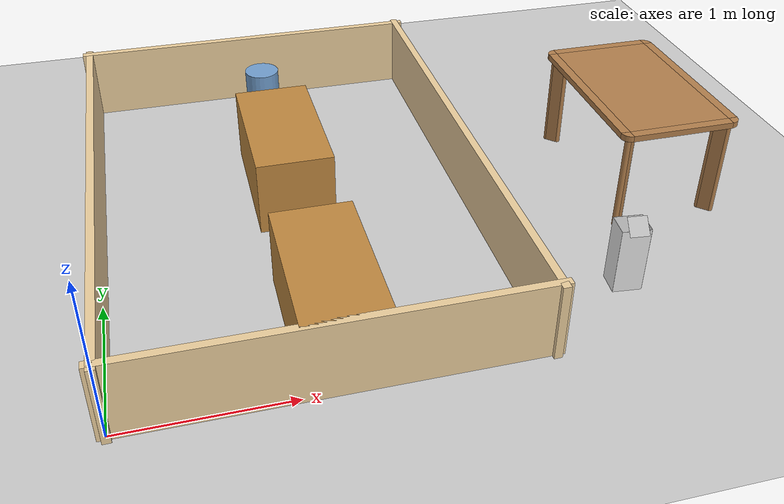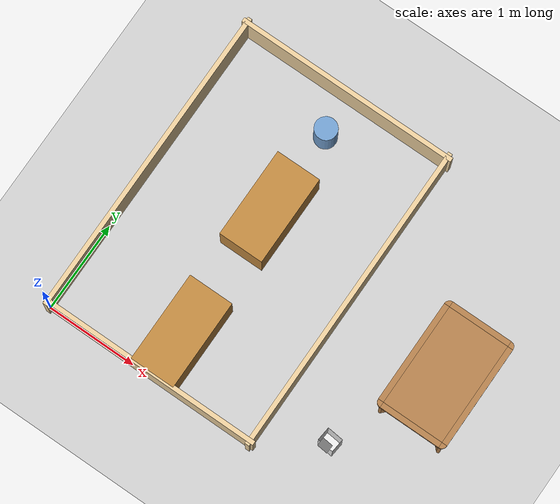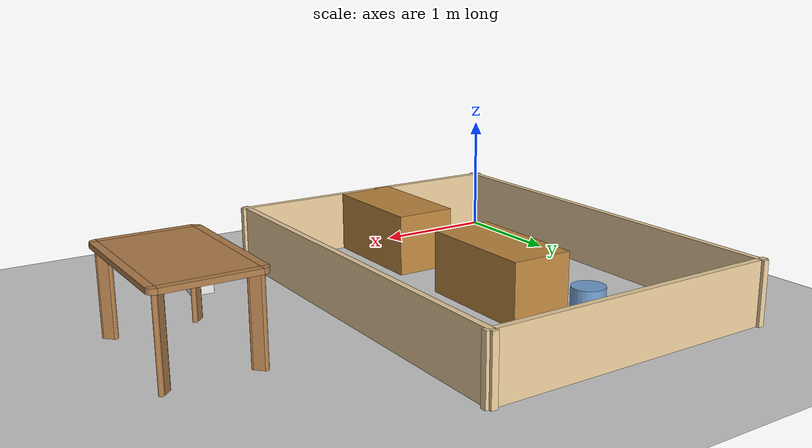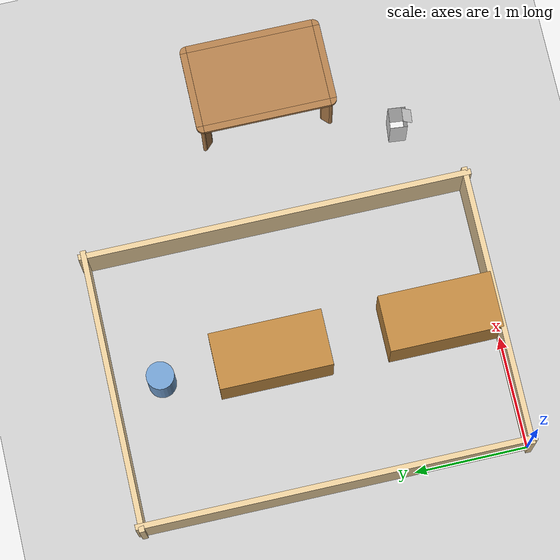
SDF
<sdf version="1.7">
 <world name="default">
  <light name="sun" type="directional">
   <pose>0 0 10 0 -0 0</pose>
   <diffuse>0.8 0.8 0.8 1</diffuse>
   <specular>0.2 0.2 0.2 1</specular>
   <attenuation>
    <range>1000</range>
    <constant>0.9</constant>
    <linear>0.01</linear>
    <quadratic>0.001</quadratic>
   </attenuation>
   <direction>-0.5 0.1 -0.9</direction>
   <spot><inner_angle>0</inner_angle><outer_angle>0</outer_angle><falloff>0</falloff></spot>
  </light>
  <model name="ground_plane">
   <static>1</static>
   <link name="link">
    <collision name="collision">
     <geometry><plane><normal>0 0 1</normal><size>100 100</size></plane></geometry>
     <surface><friction><ode><mu>100</mu><mu2>50</mu2></ode></friction></surface>
    </collision>
    <visual name="visual">
     <cast_shadows>0</cast_shadows>
     <geometry><plane><normal>0 0 1</normal><size>100 100</size></plane></geometry>
     <material>
      <script><uri>file://media/materials/scripts/gazebo.material</uri><name>Gazebo/Grey</name></script>
     </material>
    </visual>
   </link>
  </model>
  <gravity>0 0 -9.8</gravity>
  <magnetic_field>6e-06 2.3e-05 -4.2e-05</magnetic_field>
  <atmosphere type="adiabatic"/>
  <physics type="ode">
   <max_step_size>0.001</max_step_size>
   <real_time_factor>1</real_time_factor>
   <real_time_update_rate>1000</real_time_update_rate>
  </physics>
  <scene><ambient>0.4 0.4 0.4 1</ambient><background>0.7 0.7 0.7 1</background><shadows>1</shadows></scene>
  <spherical_coordinates>
   <surface_model>EARTH_WGS84</surface_model>
   <latitude_deg>0</latitude_deg>
   <longitude_deg>0</longitude_deg>
   <elevation>0</elevation>
   <heading_deg>0</heading_deg>
  </spherical_coordinates>
  <model name="charge_station">
   <link name="link">
    <inertial>
     <pose>0.034 0 0.04 1.57 -0 0</pose>
     <mass>0.3</mass>
     <inertia><ixx>0.00058</ixx><ixy>0</ixy><ixz>0</ixz><iyy>0.00058</iyy><iyz>0</iyz><izz>0.00019</izz></inertia>
    </inertial>
    <visual name="marker_0015">
     <pose>0.08 0 0.475 0 -0.785 3.1415</pose>
     <geometry><box><size>0.12 0.12 0.0001</size></box></geometry>
     <material>
      <script>
       <uri>model://marker/0015/scripts</uri>
       <uri>model://marker/0015/textures</uri>
       <name>Marker/0015_80</name>
      </script>
     </material>
    </visual>
    <visual name="box_front">
     <pose>0.076 0 0.22 0 -0 0</pose>
     <geometry><box><size>0.001 0.18 0.44</size></box></geometry>
     <material>
      <script><uri>model://base_materials/color/scripts</uri><name>hsr_color/white_transparency1</name></script>
     </material>
    </visual>
    <collision name="collision_box_front">
     <pose>0.076 0 0.22 0 -0 0</pose>
     <geometry><box><size>0.001 0.18 0.44</size></box></geometry>
     <surface>
      <bounce><restitution_coefficient>0.2</restitution_coefficient><threshold>0</threshold></bounce>
      <contact><ode><max_vel>10</max_vel></ode></contact>
     </surface>
    </collision>
    <visual name="box_back">
     <pose>-0.076 0 0.22 0 -0 0</pose>
     <geometry><box><size>0.001 0.18 0.44</size></box></geometry>
     <material>
      <script><uri>model://base_materials/color/scripts</uri><name>hsr_color/white_transparency1</name></script>
     </material>
    </visual>
    <collision name="collision_box_back">
     <pose>-0.076 0 0.22 0 -0 0</pose>
     <geometry><box><size>0.001 0.18 0.44</size></box></geometry>
     <surface>
      <bounce><restitution_coefficient>0.2</restitution_coefficient><threshold>0</threshold></bounce>
      <contact><ode><max_vel>10</max_vel></ode></contact>
     </surface>
    </collision>
    <visual name="box_right">
     <pose>0 0.09 0.22 0 -0 0</pose>
     <geometry><box><size>0.153 0.001 0.44</size></box></geometry>
     <material>
      <script><uri>model://base_materials/color/scripts</uri><name>hsr_color/white_transparency1</name></script>
     </material>
    </visual>
    <collision name="collision_box_right">
     <pose>0 0.09 0.22 0 -0 0</pose>
     <geometry><box><size>0.153 0.001 0.44</size></box></geometry>
     <surface>
      <bounce><restitution_coefficient>0.2</restitution_coefficient><threshold>0</threshold></bounce>
      <contact><ode><max_vel>10</max_vel></ode></contact>
     </surface>
    </collision>
    <visual name="box_left">
     <pose>0 -0.09 0.22 0 -0 0</pose>
     <geometry><box><size>0.153 0.001 0.44</size></box></geometry>
     <material>
      <script><uri>model://base_materials/color/scripts</uri><name>hsr_color/white_transparency1</name></script>
     </material>
    </visual>
    <collision name="collision_box_left">
     <pose>0 -0.09 0.22 0 -0 0</pose>
     <geometry><box><size>0.153 0.001 0.44</size></box></geometry>
     <surface>
      <bounce><restitution_coefficient>0.2</restitution_coefficient><threshold>0</threshold></bounce>
      <contact><ode><max_vel>10</max_vel></ode></contact>
     </surface>
    </collision>
    <visual name="box_bottom">
     <pose>0 0 0.001 0 -0 0</pose>
     <geometry><box><size>0.151 0.18 0.002</size></box></geometry>
     <material>
      <script><uri>model://base_materials/color/scripts</uri><name>hsr_color/white_transparency1</name></script>
     </material>
    </visual>
    <collision name="collision_box_bottom">
     <pose>0 0 0.001 0 -0 0</pose>
     <geometry><box><size>0.151 0.18 0.002</size></box></geometry>
     <surface>
      <bounce><restitution_coefficient>0.2</restitution_coefficient><threshold>0</threshold></bounce>
      <contact><ode><max_vel>10</max_vel></ode></contact>
     </surface>
    </collision>
    <velocity_decay><linear>0</linear><angular>0</angular></velocity_decay>
   </link>
   <static>0</static>
   <pose>3.03722 0.457435 -7e-06 0 -4.1e-05 -1.67325</pose>
  </model>
  <model name="kitchen_table">
   <link name="link">
    <inertial>
     <mass>10</mass>
     <inertia><ixx>1</ixx><ixy>0</ixy><ixz>0</ixz><iyy>1</iyy><iyz>0</iyz><izz>1</izz></inertia>
    </inertial>
    <visual name="center_board">
     <pose>0 0 0.68 0 -0 0</pose>
     <geometry><box><size>0.68 1.13 0.04</size></box></geometry>
     <material>
      <script><uri>model://base_materials/wood/scripts/wood.material</uri><name>base_materials/wood</name></script>
     </material>
    </visual>
    <collision name="collision_center_board">
     <pose>0 0 0.68 0 -0 0</pose>
     <geometry><box><size>0.68 1.13 0.04</size></box></geometry>
    </collision>
    <visual name="front_board">
     <pose>0.37 0 0.68 0 -0 0</pose>
     <geometry><box><size>0.06 1.13 0.04</size></box></geometry>
     <material>
      <script><uri>model://base_materials/wood/scripts/wood.material</uri><name>base_materials/wood</name></script>
     </material>
    </visual>
    <collision name="collision_front_board">
     <pose>0.37 0 0.68 0 -0 0</pose>
     <geometry><box><size>0.06 1.13 0.04</size></box></geometry>
    </collision>
    <visual name="back_board">
     <pose>-0.37 0 0.68 0 -0 0</pose>
     <geometry><box><size>0.06 1.13 0.04</size></box></geometry>
     <material>
      <script><uri>model://base_materials/wood/scripts/wood.material</uri><name>base_materials/wood</name></script>
     </material>
    </visual>
    <collision name="collision_back_board">
     <pose>-0.37 0 0.68 0 -0 0</pose>
     <geometry><box><size>0.06 1.13 0.04</size></box></geometry>
    </collision>
    <visual name="right_board">
     <pose>0 0.595 0.68 0 -0 0</pose>
     <geometry><box><size>0.68 0.06 0.04</size></box></geometry>
     <material>
      <script><uri>model://base_materials/wood/scripts/wood.material</uri><name>base_materials/wood</name></script>
     </material>
    </visual>
    <collision name="collision_right_board">
     <pose>0 0.595 0.68 0 -0 0</pose>
     <geometry><box><size>0.68 0.06 0.04</size></box></geometry>
    </collision>
    <visual name="left_board">
     <pose>0 -0.595 0.68 0 -0 0</pose>
     <geometry><box><size>0.68 0.06 0.04</size></box></geometry>
     <material>
      <script><uri>model://base_materials/wood/scripts/wood.material</uri><name>base_materials/wood</name></script>
     </material>
    </visual>
    <collision name="collision_left_board">
     <pose>0 -0.595 0.68 0 -0 0</pose>
     <geometry><box><size>0.68 0.06 0.04</size></box></geometry>
    </collision>
    <visual name="front_right_corner_board">
     <pose>0.34 0.565 0.68 0 -0 0</pose>
     <geometry><cylinder><radius>0.06</radius><length>0.039</length></cylinder></geometry>
     <material>
      <script><uri>model://base_materials/wood/scripts/wood.material</uri><name>base_materials/wood</name></script>
     </material>
    </visual>
    <collision name="collision_front_right_corner_board">
     <pose>0.34 0.565 0.68 0 -0 0</pose>
     <geometry><cylinder><radius>0.06</radius><length>0.039</length></cylinder></geometry>
    </collision>
    <visual name="front_left_corner_board">
     <pose>0.34 -0.565 0.68 0 -0 0</pose>
     <geometry><cylinder><radius>0.06</radius><length>0.039</length></cylinder></geometry>
     <material>
      <script><uri>model://base_materials/wood/scripts/wood.material</uri><name>base_materials/wood</name></script>
     </material>
    </visual>
    <collision name="collision_front_left_corner_board">
     <pose>0.34 -0.565 0.68 0 -0 0</pose>
     <geometry><cylinder><radius>0.06</radius><length>0.039</length></cylinder></geometry>
    </collision>
    <visual name="front_back_right_corner_board">
     <pose>-0.34 0.565 0.68 0 -0 0</pose>
     <geometry><cylinder><radius>0.06</radius><length>0.039</length></cylinder></geometry>
     <material>
      <script><uri>model://base_materials/wood/scripts/wood.material</uri><name>base_materials/wood</name></script>
     </material>
    </visual>
    <collision name="collision_back_right_corner_board">
     <pose>-0.34 0.565 0.68 0 -0 0</pose>
     <geometry><cylinder><radius>0.06</radius><length>0.039</length></cylinder></geometry>
    </collision>
    <visual name="front_back_left_corner_board">
     <pose>-0.34 -0.565 0.68 0 -0 0</pose>
     <geometry><cylinder><radius>0.06</radius><length>0.039</length></cylinder></geometry>
     <material>
      <script><uri>model://base_materials/wood/scripts/wood.material</uri><name>base_materials/wood</name></script>
     </material>
    </visual>
    <collision name="collision_back_left_corner_board">
     <pose>-0.34 -0.565 0.68 0 -0 0</pose>
     <geometry><cylinder><radius>0.06</radius><length>0.039</length></cylinder></geometry>
    </collision>
    <visual name="front_left_corner_frame1">
     <pose>0.345858 -0.57086 0.33 0 -0 0</pose>
     <geometry><cylinder><radius>0.02</radius><length>0.66</length></cylinder></geometry>
     <material>
      <script><uri>model://base_materials/wood/scripts/wood.material</uri><name>base_materials/wood</name></script>
     </material>
    </visual>
    <collision name="collision_front_left_corner_frame1">
     <pose>0.345858 -0.57086 0.33 0 -0 0</pose>
     <geometry><cylinder><radius>0.02</radius><length>0.66</length></cylinder></geometry>
    </collision>
    <visual name="front_left_corner_frame2">
     <pose>0.317574 -0.54257 0.33 0 -0 0.7854</pose>
     <geometry><box><size>0.04 0.08 0.66</size></box></geometry>
     <material>
      <script><uri>model://base_materials/wood/scripts/wood.material</uri><name>base_materials/wood</name></script>
     </material>
    </visual>
    <collision name="collision_front_left_corner_frame2">
     <pose>0.317574 -0.54257 0.33 0 -0 0.7854</pose>
     <geometry><box><size>0.04 0.08 0.66</size></box></geometry>
    </collision>
    <visual name="front_left_corner_frame3">
     <pose>0.289289 -0.51429 0.33 0 -0 0</pose>
     <geometry><cylinder><radius>0.02</radius><length>0.66</length></cylinder></geometry>
     <material>
      <script><uri>model://base_materials/wood/scripts/wood.material</uri><name>base_materials/wood</name></script>
     </material>
    </visual>
    <collision name="collision_front_left_corner_frame3">
     <pose>0.289289 -0.51429 0.33 0 -0 0</pose>
     <geometry><cylinder><radius>0.02</radius><length>0.66</length></cylinder></geometry>
    </collision>
    <visual name="front_right_corner_frame1">
     <pose>0.345858 0.57086 0.33 0 -0 0</pose>
     <geometry><cylinder><radius>0.02</radius><length>0.66</length></cylinder></geometry>
     <material>
      <script><uri>model://base_materials/wood/scripts/wood.material</uri><name>base_materials/wood</name></script>
     </material>
    </visual>
    <collision name="collision_front_right_corner_frame1">
     <pose>0.345858 0.57086 0.33 0 -0 0</pose>
     <geometry><cylinder><radius>0.02</radius><length>0.66</length></cylinder></geometry>
    </collision>
    <visual name="front_right_corner_frame2">
     <pose>0.317574 0.54257 0.33 0 0 -0.7854</pose>
     <geometry><box><size>0.04 0.08 0.66</size></box></geometry>
     <material>
      <script><uri>model://base_materials/wood/scripts/wood.material</uri><name>base_materials/wood</name></script>
     </material>
    </visual>
    <collision name="collision_front_right_corner_frame2">
     <pose>0.317574 0.54257 0.33 0 0 -0.7854</pose>
     <geometry><box><size>0.04 0.08 0.66</size></box></geometry>
    </collision>
    <visual name="front_right_corner_frame3">
     <pose>0.289289 0.51429 0.33 0 -0 0</pose>
     <geometry><cylinder><radius>0.02</radius><length>0.66</length></cylinder></geometry>
     <material>
      <script><uri>model://base_materials/wood/scripts/wood.material</uri><name>base_materials/wood</name></script>
     </material>
    </visual>
    <collision name="collision_front_right_corner_frame3">
     <pose>0.289289 0.51429 0.33 0 -0 0</pose>
     <geometry><cylinder><radius>0.02</radius><length>0.66</length></cylinder></geometry>
    </collision>
    <visual name="back_left_corner_frame1">
     <pose>-0.345858 -0.57086 0.33 0 -0 0</pose>
     <geometry><cylinder><radius>0.02</radius><length>0.66</length></cylinder></geometry>
     <material>
      <script><uri>model://base_materials/wood/scripts/wood.material</uri><name>base_materials/wood</name></script>
     </material>
    </visual>
    <collision name="collision_back_left_corner_frame1">
     <pose>-0.345858 -0.57086 0.33 0 -0 0</pose>
     <geometry><cylinder><radius>0.02</radius><length>0.66</length></cylinder></geometry>
    </collision>
    <visual name="back_left_corner_frame2">
     <pose>-0.317574 -0.54257 0.33 0 0 -0.7854</pose>
     <geometry><box><size>0.04 0.08 0.66</size></box></geometry>
     <material>
      <script><uri>model://base_materials/wood/scripts/wood.material</uri><name>base_materials/wood</name></script>
     </material>
    </visual>
    <collision name="collision_back_left_corner_frame2">
     <pose>-0.317574 -0.54257 0.33 0 0 -0.7854</pose>
     <geometry><box><size>0.04 0.08 0.66</size></box></geometry>
    </collision>
    <visual name="back_left_corner_frame3">
     <pose>-0.289289 -0.51429 0.33 0 -0 0</pose>
     <geometry><cylinder><radius>0.02</radius><length>0.66</length></cylinder></geometry>
     <material>
      <script><uri>model://base_materials/wood/scripts/wood.material</uri><name>base_materials/wood</name></script>
     </material>
    </visual>
    <collision name="collision_back_left_corner_frame3">
     <pose>-0.289289 -0.51429 0.33 0 -0 0</pose>
     <geometry><cylinder><radius>0.02</radius><length>0.66</length></cylinder></geometry>
    </collision>
    <visual name="back_right_corner_frame1">
     <pose>-0.345858 0.57086 0.33 0 -0 0</pose>
     <geometry><cylinder><radius>0.02</radius><length>0.66</length></cylinder></geometry>
     <material>
      <script><uri>model://base_materials/wood/scripts/wood.material</uri><name>base_materials/wood</name></script>
     </material>
    </visual>
    <collision name="collision_back_right_corner_frame1">
     <pose>-0.345858 0.57086 0.33 0 -0 0</pose>
     <geometry><cylinder><radius>0.02</radius><length>0.66</length></cylinder></geometry>
    </collision>
    <visual name="back_right_corner_frame2">
     <pose>-0.317574 0.54257 0.33 0 -0 0.7854</pose>
     <geometry><box><size>0.04 0.08 0.66</size></box></geometry>
     <material>
      <script><uri>model://base_materials/wood/scripts/wood.material</uri><name>base_materials/wood</name></script>
     </material>
    </visual>
    <collision name="collision_back_right_corner_frame2">
     <pose>-0.317574 0.54257 0.33 0 -0 0.7854</pose>
     <geometry><box><size>0.04 0.08 0.66</size></box></geometry>
    </collision>
    <visual name="back_right_corner_frame3">
     <pose>-0.289289 0.51429 0.33 0 -0 0</pose>
     <geometry><cylinder><radius>0.02</radius><length>0.66</length></cylinder></geometry>
     <material>
      <script><uri>model://base_materials/wood/scripts/wood.material</uri><name>base_materials/wood</name></script>
     </material>
    </visual>
    <collision name="collision_back_right_corner_frame3">
     <pose>-0.289289 0.51429 0.33 0 -0 0</pose>
     <geometry><cylinder><radius>0.02</radius><length>0.66</length></cylinder></geometry>
    </collision>
    <velocity_decay><linear>0</linear><angular>0</angular></velocity_decay>
   </link>
   <static>1</static>
   <pose>3.60397 1.58429 0 0 -0 0</pose>
  </model>
  <model name="museum_partition">
   <link name="link">
    <inertial>
     <mass>1</mass>
     <inertia>
      <ixx>0.166667</ixx>
      <ixy>0</ixy>
      <ixz>0</ixz>
      <iyy>0.166667</iyy>
      <iyz>0</iyz>
      <izz>0.166667</izz>
     </inertia>
    </inertial>
    <visual name="visual">
     <geometry><box><size>0.5 1 0.5</size></box></geometry>
     <material>
      <script><name>Gazebo/Grey</name><uri>file://media/materials/scripts/gazebo.material</uri></script>
      <shader type="pixel"><normal_map>__default__</normal_map></shader>
      <ambient>0.749 0.533 0.251 1</ambient>
      <diffuse>0.7 0.7 0.7 1</diffuse>
      <specular>0.01 0.01 0.01 1</specular>
      <emissive>0 0 0 1</emissive>
     </material>
    </visual>
    <collision name="collision">
     <geometry><box><size>0.5 1 0.5</size></box></geometry>
     <surface>
      <friction>
       <ode><mu>1</mu><mu2>1</mu2><fdir1>0 0 0</fdir1><slip1>0</slip1><slip2>0</slip2></ode>
       <torsional>
        <coefficient>1</coefficient>
        <patch_radius>0</patch_radius>
        <surface_radius>0</surface_radius>
        <use_patch_radius>1</use_patch_radius>
        <ode><slip>0</slip></ode>
       </torsional>
      </friction>
      <bounce><restitution_coefficient>0</restitution_coefficient><threshold>1e+06</threshold></bounce>
      <contact>
       <collide_without_contact>0</collide_without_contact>
       <collide_without_contact_bitmask>1</collide_without_contact_bitmask>
       <collide_bitmask>1</collide_bitmask>
       <ode>
        <soft_cfm>0</soft_cfm>
        <soft_erp>0.2</soft_erp>
        <kp>1e+13</kp>
        <kd>1</kd>
        <max_vel>0.01</max_vel>
        <min_depth>0</min_depth>
       </ode>
       <bullet>
        <split_impulse>1</split_impulse>
        <split_impulse_penetration_threshold>-0.01</split_impulse_penetration_threshold>
        <soft_cfm>0</soft_cfm>
        <soft_erp>0.2</soft_erp>
        <kp>1e+13</kp>
        <kd>1</kd>
       </bullet>
      </contact>
     </surface>
    </collision>
    <collision name="collision_1">
     <geometry><box><size>0.5 1 0.5</size></box></geometry>
     <surface>
      <friction>
       <ode><mu>1</mu><mu2>1</mu2><fdir1>0 0 0</fdir1><slip1>0</slip1><slip2>0</slip2></ode>
       <torsional>
        <coefficient>1</coefficient>
        <patch_radius>0</patch_radius>
        <surface_radius>0</surface_radius>
        <use_patch_radius>1</use_patch_radius>
        <ode><slip>0</slip></ode>
       </torsional>
      </friction>
      <bounce><restitution_coefficient>0</restitution_coefficient><threshold>1e+06</threshold></bounce>
      <contact>
       <collide_without_contact>0</collide_without_contact>
       <collide_without_contact_bitmask>1</collide_without_contact_bitmask>
       <collide_bitmask>1</collide_bitmask>
       <ode>
        <soft_cfm>0</soft_cfm>
        <soft_erp>0.2</soft_erp>
        <kp>1e+13</kp>
        <kd>1</kd>
        <max_vel>0.01</max_vel>
        <min_depth>0</min_depth>
       </ode>
       <bullet>
        <split_impulse>1</split_impulse>
        <split_impulse_penetration_threshold>-0.01</split_impulse_penetration_threshold>
        <soft_cfm>0</soft_cfm>
        <soft_erp>0.2</soft_erp>
        <kp>1e+13</kp>
        <kd>1</kd>
       </bullet>
      </contact>
     </surface>
    </collision>
   </link>
   <static>1</static>
   <pose>1.25 0.5 0.25 0 -0 0</pose>
  </model>
  <model name="museum_partition_clone">
   <link name="link">
    <inertial>
     <mass>1</mass>
     <inertia>
      <ixx>0.166667</ixx>
      <ixy>0</ixy>
      <ixz>0</ixz>
      <iyy>0.166667</iyy>
      <iyz>0</iyz>
      <izz>0.166667</izz>
     </inertia>
    </inertial>
    <visual name="visual">
     <geometry><box><size>0.5 1 0.5</size></box></geometry>
     <material>
      <script><name>Gazebo/Grey</name><uri>file://media/materials/scripts/gazebo.material</uri></script>
      <shader type="pixel"><normal_map>__default__</normal_map></shader>
      <ambient>0.749 0.533 0.251 1</ambient>
      <diffuse>0.7 0.7 0.7 1</diffuse>
      <specular>0.01 0.01 0.01 1</specular>
      <emissive>0 0 0 1</emissive>
     </material>
    </visual>
    <collision name="collision">
     <geometry><box><size>0.5 1 0.5</size></box></geometry>
     <surface>
      <friction>
       <ode><mu>1</mu><mu2>1</mu2><fdir1>0 0 0</fdir1><slip1>0</slip1><slip2>0</slip2></ode>
       <torsional>
        <coefficient>1</coefficient>
        <patch_radius>0</patch_radius>
        <surface_radius>0</surface_radius>
        <use_patch_radius>1</use_patch_radius>
        <ode><slip>0</slip></ode>
       </torsional>
      </friction>
      <bounce><restitution_coefficient>0</restitution_coefficient><threshold>1e+06</threshold></bounce>
      <contact>
       <collide_without_contact>0</collide_without_contact>
       <collide_without_contact_bitmask>1</collide_without_contact_bitmask>
       <collide_bitmask>1</collide_bitmask>
       <ode>
        <soft_cfm>0</soft_cfm>
        <soft_erp>0.2</soft_erp>
        <kp>1e+13</kp>
        <kd>1</kd>
        <max_vel>0.01</max_vel>
        <min_depth>0</min_depth>
       </ode>
       <bullet>
        <split_impulse>1</split_impulse>
        <split_impulse_penetration_threshold>-0.01</split_impulse_penetration_threshold>
        <soft_cfm>0</soft_cfm>
        <soft_erp>0.2</soft_erp>
        <kp>1e+13</kp>
        <kd>1</kd>
       </bullet>
      </contact>
     </surface>
    </collision>
    <collision name="collision_1">
     <geometry><box><size>0.5 1 0.5</size></box></geometry>
     <surface>
      <friction>
       <ode><mu>1</mu><mu2>1</mu2><fdir1>0 0 0</fdir1><slip1>0</slip1><slip2>0</slip2></ode>
       <torsional>
        <coefficient>1</coefficient>
        <patch_radius>0</patch_radius>
        <surface_radius>0</surface_radius>
        <use_patch_radius>1</use_patch_radius>
        <ode><slip>0</slip></ode>
       </torsional>
      </friction>
      <bounce><restitution_coefficient>0</restitution_coefficient><threshold>1e+06</threshold></bounce>
      <contact>
       <collide_without_contact>0</collide_without_contact>
       <collide_without_contact_bitmask>1</collide_without_contact_bitmask>
       <collide_bitmask>1</collide_bitmask>
       <ode>
        <soft_cfm>0</soft_cfm>
        <soft_erp>0.2</soft_erp>
        <kp>1e+13</kp>
        <kd>1</kd>
        <max_vel>0.01</max_vel>
        <min_depth>0</min_depth>
       </ode>
       <bullet>
        <split_impulse>1</split_impulse>
        <split_impulse_penetration_threshold>-0.01</split_impulse_penetration_threshold>
        <soft_cfm>0</soft_cfm>
        <soft_erp>0.2</soft_erp>
        <kp>1e+13</kp>
        <kd>1</kd>
       </bullet>
      </contact>
     </surface>
    </collision>
   </link>
   <static>1</static>
   <pose>1.25 2 0.25 0 -0 0</pose>
  </model>
  <model name="diamond_goal">
   <link name="link">
    <inertial>
     <mass>1</mass>
     <inertia><ixx>0.145833</ixx><ixy>0</ixy><ixz>0</ixz><iyy>0.145833</iyy><iyz>0</iyz><izz>0.125</izz></inertia>
    </inertial>
    <visual name="visual">
     <geometry><cylinder><radius>0.122823</radius><length>0.415739</length></cylinder></geometry>
     <material>
      <script><name>Gazebo/Grey</name><uri>file://media/materials/scripts/gazebo.material</uri></script>
      <shader type="pixel"><normal_map>__default__</normal_map></shader>
      <ambient>0.447 0.624 0.812 1</ambient>
      <diffuse>0.7 0.7 0.7 1</diffuse>
      <specular>0.01 0.01 0.01 1</specular>
      <emissive>0 0 0 1</emissive>
     </material>
    </visual>
    <collision name="collision">
     <geometry><cylinder><radius>0.122823</radius><length>0.415739</length></cylinder></geometry>
     <surface>
      <friction>
       <ode><mu>1</mu><mu2>1</mu2><fdir1>0 0 0</fdir1><slip1>0</slip1><slip2>0</slip2></ode>
       <torsional>
        <coefficient>1</coefficient>
        <patch_radius>0</patch_radius>
        <surface_radius>0</surface_radius>
        <use_patch_radius>1</use_patch_radius>
        <ode><slip>0</slip></ode>
       </torsional>
      </friction>
      <bounce><restitution_coefficient>0</restitution_coefficient><threshold>1e+06</threshold></bounce>
      <contact>
       <collide_without_contact>0</collide_without_contact>
       <collide_without_contact_bitmask>1</collide_without_contact_bitmask>
       <collide_bitmask>1</collide_bitmask>
       <ode>
        <soft_cfm>0</soft_cfm>
        <soft_erp>0.2</soft_erp>
        <kp>1e+13</kp>
        <kd>1</kd>
        <max_vel>0.01</max_vel>
        <min_depth>0</min_depth>
       </ode>
       <bullet>
        <split_impulse>1</split_impulse>
        <split_impulse_penetration_threshold>-0.01</split_impulse_penetration_threshold>
        <soft_cfm>0</soft_cfm>
        <soft_erp>0.2</soft_erp>
        <kp>1e+13</kp>
        <kd>1</kd>
       </bullet>
      </contact>
     </surface>
    </collision>
   </link>
   <static>0</static>
   <pose>1.25 2.9757 0.20786 0 -0 0</pose>
  </model>
  <model name="museum_wall">
   <link name="Wall_0">
    <pose>0 -1.7 0 0 -0 0</pose>
    <gravity>0</gravity>
    <inertial>
     <mass>1</mass>
     <inertia><ixx>1</ixx><ixy>0</ixy><ixz>0</ixz><iyy>1</iyy><iyz>0</iyz><izz>1</izz></inertia>
    </inertial>
    <visual name="Wall_0_Visual">
     <pose>0 0 0.25 0 -0 0</pose>
     <geometry><box><size>2.5 0.05 0.5</size></box></geometry>
     <material>
      <script><uri>file://media/materials/scripts/gazebo.material</uri><name>Gazebo/Grey</name></script>
      <ambient>0.922 0.808 0.616 1</ambient>
      <shader type="pixel"><normal_map>__default__</normal_map></shader>
      <diffuse>0.7 0.7 0.7 1</diffuse>
      <specular>0.01 0.01 0.01 1</specular>
      <emissive>0 0 0 1</emissive>
     </material>
     <meta><layer>0</layer></meta>
    </visual>
    <collision name="Wall_0_Collision">
     <pose>0 0 0.25 0 -0 0</pose>
     <geometry><box><size>2.5 0.05 0.5</size></box></geometry>
     <surface>
      <friction>
       <ode><mu>1</mu><mu2>1</mu2><fdir1>0 0 0</fdir1><slip1>0</slip1><slip2>0</slip2></ode>
       <torsional>
        <coefficient>1</coefficient>
        <patch_radius>0</patch_radius>
        <surface_radius>0</surface_radius>
        <use_patch_radius>1</use_patch_radius>
        <ode><slip>0</slip></ode>
       </torsional>
      </friction>
      <bounce><restitution_coefficient>0</restitution_coefficient><threshold>1e+06</threshold></bounce>
      <contact>
       <collide_without_contact>0</collide_without_contact>
       <collide_without_contact_bitmask>1</collide_without_contact_bitmask>
       <collide_bitmask>1</collide_bitmask>
       <ode>
        <soft_cfm>0</soft_cfm>
        <soft_erp>0.2</soft_erp>
        <kp>1e+13</kp>
        <kd>1</kd>
        <max_vel>0.01</max_vel>
        <min_depth>0</min_depth>
       </ode>
       <bullet>
        <split_impulse>1</split_impulse>
        <split_impulse_penetration_threshold>-0.01</split_impulse_penetration_threshold>
        <soft_cfm>0</soft_cfm>
        <soft_erp>0.2</soft_erp>
        <kp>1e+13</kp>
        <kd>1</kd>
       </bullet>
      </contact>
     </surface>
    </collision>
   </link>
   <link name="Wall_5">
    <pose>1.2 0 0 0 -0 1.5708</pose>
    <inertial>
     <mass>1</mass>
     <inertia><ixx>1</ixx><ixy>0</ixy><ixz>0</ixz><iyy>1</iyy><iyz>0</iyz><izz>1</izz></inertia>
    </inertial>
    <visual name="Wall_5_Visual">
     <pose>0 0 0.25 0 -0 0</pose>
     <geometry><box><size>3.5 0.05 0.5</size></box></geometry>
     <material>
      <script><uri>file://media/materials/scripts/gazebo.material</uri><name>Gazebo/Grey</name></script>
      <ambient>0.922 0.808 0.616 1</ambient>
      <shader type="pixel"><normal_map>__default__</normal_map></shader>
      <diffuse>0.7 0.7 0.7 1</diffuse>
      <specular>0.01 0.01 0.01 1</specular>
      <emissive>0 0 0 1</emissive>
     </material>
     <meta><layer>0</layer></meta>
    </visual>
    <collision name="Wall_5_Collision">
     <pose>0 0 0.25 0 -0 0</pose>
     <geometry><box><size>3.5 0.05 0.5</size></box></geometry>
     <surface>
      <friction>
       <ode><mu>1</mu><mu2>1</mu2><fdir1>0 0 0</fdir1><slip1>0</slip1><slip2>0</slip2></ode>
       <torsional>
        <coefficient>1</coefficient>
        <patch_radius>0</patch_radius>
        <surface_radius>0</surface_radius>
        <use_patch_radius>1</use_patch_radius>
        <ode><slip>0</slip></ode>
       </torsional>
      </friction>
      <bounce><restitution_coefficient>0</restitution_coefficient><threshold>1e+06</threshold></bounce>
      <contact>
       <collide_without_contact>0</collide_without_contact>
       <collide_without_contact_bitmask>1</collide_without_contact_bitmask>
       <collide_bitmask>1</collide_bitmask>
       <ode>
        <soft_cfm>0</soft_cfm>
        <soft_erp>0.2</soft_erp>
        <kp>1e+13</kp>
        <kd>1</kd>
        <max_vel>0.01</max_vel>
        <min_depth>0</min_depth>
       </ode>
       <bullet>
        <split_impulse>1</split_impulse>
        <split_impulse_penetration_threshold>-0.01</split_impulse_penetration_threshold>
        <soft_cfm>0</soft_cfm>
        <soft_erp>0.2</soft_erp>
        <kp>1e+13</kp>
        <kd>1</kd>
       </bullet>
      </contact>
     </surface>
    </collision>
   </link>
   <link name="Wall_7">
    <pose>0 1.7 0 0 -0 3.14159</pose>
    <inertial>
     <mass>1</mass>
     <inertia><ixx>1</ixx><ixy>0</ixy><ixz>0</ixz><iyy>1</iyy><iyz>0</iyz><izz>1</izz></inertia>
    </inertial>
    <visual name="Wall_7_Visual">
     <pose>0 0 0.25 0 -0 0</pose>
     <geometry><box><size>2.5 0.05 0.5</size></box></geometry>
     <material>
      <script><uri>file://media/materials/scripts/gazebo.material</uri><name>Gazebo/Grey</name></script>
      <ambient>0.922 0.808 0.616 1</ambient>
      <shader type="pixel"><normal_map>__default__</normal_map></shader>
      <diffuse>0.7 0.7 0.7 1</diffuse>
      <specular>0.01 0.01 0.01 1</specular>
      <emissive>0 0 0 1</emissive>
     </material>
     <meta><layer>0</layer></meta>
    </visual>
    <collision name="Wall_7_Collision">
     <pose>0 0 0.25 0 -0 0</pose>
     <geometry><box><size>2.5 0.05 0.5</size></box></geometry>
     <surface>
      <friction>
       <ode><mu>1</mu><mu2>1</mu2><fdir1>0 0 0</fdir1><slip1>0</slip1><slip2>0</slip2></ode>
       <torsional>
        <coefficient>1</coefficient>
        <patch_radius>0</patch_radius>
        <surface_radius>0</surface_radius>
        <use_patch_radius>1</use_patch_radius>
        <ode><slip>0</slip></ode>
       </torsional>
      </friction>
      <bounce><restitution_coefficient>0</restitution_coefficient><threshold>1e+06</threshold></bounce>
      <contact>
       <collide_without_contact>0</collide_without_contact>
       <collide_without_contact_bitmask>1</collide_without_contact_bitmask>
       <collide_bitmask>1</collide_bitmask>
       <ode>
        <soft_cfm>0</soft_cfm>
        <soft_erp>0.2</soft_erp>
        <kp>1e+13</kp>
        <kd>1</kd>
        <max_vel>0.01</max_vel>
        <min_depth>0</min_depth>
       </ode>
       <bullet>
        <split_impulse>1</split_impulse>
        <split_impulse_penetration_threshold>-0.01</split_impulse_penetration_threshold>
        <soft_cfm>0</soft_cfm>
        <soft_erp>0.2</soft_erp>
        <kp>1e+13</kp>
        <kd>1</kd>
       </bullet>
      </contact>
     </surface>
    </collision>
   </link>
   <link name="Wall_9">
    <pose>-1.2 0 0 0 0 -1.5708</pose>
    <inertial>
     <mass>1</mass>
     <inertia><ixx>1</ixx><ixy>0</ixy><ixz>0</ixz><iyy>1</iyy><iyz>0</iyz><izz>1</izz></inertia>
    </inertial>
    <visual name="Wall_9_Visual">
     <pose>0 0 0.25 0 -0 0</pose>
     <geometry><box><size>3.5 0.05 0.5</size></box></geometry>
     <material>
      <script><uri>file://media/materials/scripts/gazebo.material</uri><name>Gazebo/Grey</name></script>
      <ambient>0.922 0.808 0.616 1</ambient>
      <shader type="pixel"><normal_map>__default__</normal_map></shader>
      <diffuse>0.7 0.7 0.7 1</diffuse>
      <specular>0.01 0.01 0.01 1</specular>
      <emissive>0 0 0 1</emissive>
     </material>
     <meta><layer>0</layer></meta>
    </visual>
    <collision name="Wall_9_Collision">
     <pose>0 0 0.25 0 -0 0</pose>
     <geometry><box><size>3.5 0.05 0.5</size></box></geometry>
     <surface>
      <friction>
       <ode><mu>1</mu><mu2>1</mu2><fdir1>0 0 0</fdir1><slip1>0</slip1><slip2>0</slip2></ode>
       <torsional>
        <coefficient>1</coefficient>
        <patch_radius>0</patch_radius>
        <surface_radius>0</surface_radius>
        <use_patch_radius>1</use_patch_radius>
        <ode><slip>0</slip></ode>
       </torsional>
      </friction>
      <bounce><restitution_coefficient>0</restitution_coefficient><threshold>1e+06</threshold></bounce>
      <contact>
       <collide_without_contact>0</collide_without_contact>
       <collide_without_contact_bitmask>1</collide_without_contact_bitmask>
       <collide_bitmask>1</collide_bitmask>
       <ode>
        <soft_cfm>0</soft_cfm>
        <soft_erp>0.2</soft_erp>
        <kp>1e+13</kp>
        <kd>1</kd>
        <max_vel>0.01</max_vel>
        <min_depth>0</min_depth>
       </ode>
       <bullet>
        <split_impulse>1</split_impulse>
        <split_impulse_penetration_threshold>-0.01</split_impulse_penetration_threshold>
        <soft_cfm>0</soft_cfm>
        <soft_erp>0.2</soft_erp>
        <kp>1e+13</kp>
        <kd>1</kd>
       </bullet>
      </contact>
     </surface>
    </collision>
   </link>
   <static>1</static>
   <pose>1.20479 1.70143 0 0 -0 0</pose>
  </model>
 </world>
</sdf>
